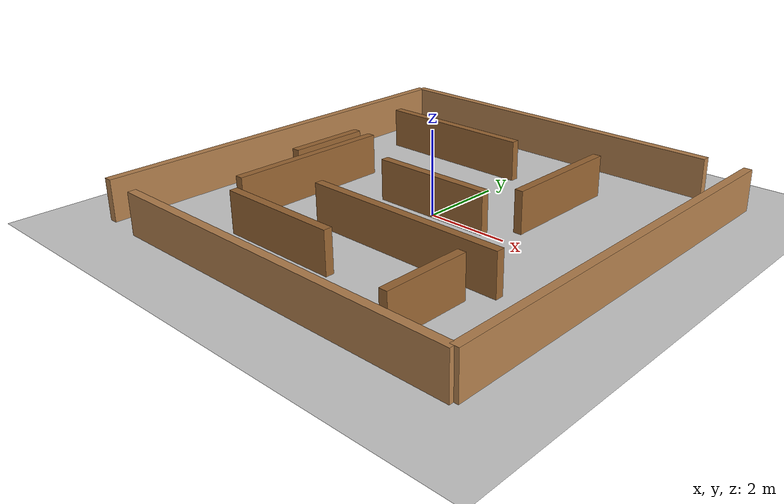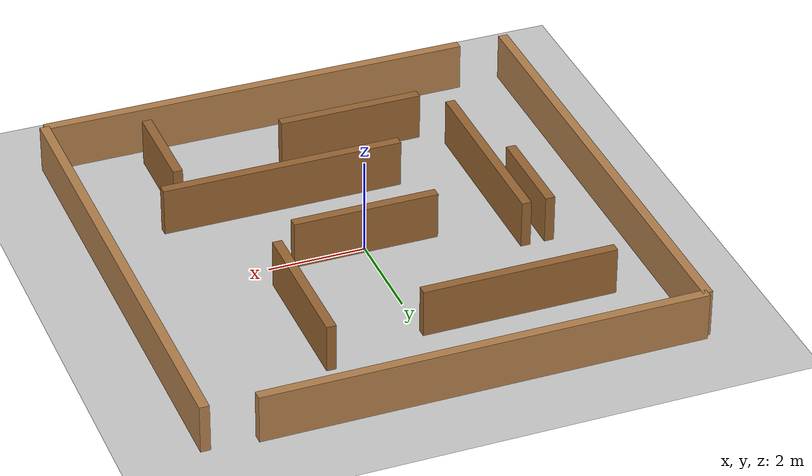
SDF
<?xml version="1.0" ?>
<sdf version="1.8">
  <world name="maze_world">
    <!-- System plugins required for Gazebo Harmonic -->
    <plugin filename="gz-sim-physics-system" name="gz::sim::systems::Physics"/>
    <plugin filename="gz-sim-user-commands-system" name="gz::sim::systems::UserCommands"/>
    <plugin filename="gz-sim-scene-broadcaster-system" name="gz::sim::systems::SceneBroadcaster"/>

    <physics name="1ms" type="ignored">
      <max_step_size>0.001</max_step_size>
      <real_time_factor>1.0</real_time_factor>
    </physics>

    <!-- Lighting -->
    <light type="directional" name="sun">
      <cast_shadows>true</cast_shadows>
      <pose>0 0 10 0 0 0</pose>
      <diffuse>0.8 0.8 0.8 1</diffuse>
      <specular>0.2 0.2 0.2 1</specular>
      <attenuation>
        <range>1000</range>
        <constant>0.9</constant>
        <linear>0.01</linear>
        <quadratic>0.001</quadratic>
      </attenuation>
      <direction>-0.5 0.1 -0.9</direction>
    </light>

    <!-- Ground plane -->
    <model name="ground_plane">
      <static>true</static>
      <link name="link">
        <collision name="collision">
          <geometry>
            <plane>
              <normal>0 0 1</normal>
              <size>20 20</size>
            </plane>
          </geometry>
        </collision>
        <visual name="visual">
          <geometry>
            <plane>
              <normal>0 0 1</normal>
              <size>20 20</size>
            </plane>
          </geometry>
          <material>
            <ambient>0.5 0.5 0.5 1</ambient>
            <diffuse>0.8 0.8 0.8 1</diffuse>
          </material>
        </visual>
      </link>
    </model>

    <!-- Maze walls - Outer boundary -->
    <model name="wall_north">
      <pose>-0.5 5 0.5 0 0 0</pose>
      <static>true</static>
      <link name="link">
        <collision name="collision">
          <geometry>
            <box><size>9 0.2 1</size></box>
          </geometry>
        </collision>
        <visual name="visual">
          <geometry>
            <box><size>9 0.2 1</size></box>
          </geometry>
          <material>
            <ambient>0.7 0.5 0.3 1</ambient>
            <diffuse>0.7 0.5 0.3 1</diffuse>
          </material>
        </visual>
      </link>
    </model>

    <model name="wall_south">
      <pose>0.5 -5 0.5 0 0 0</pose>
      <static>true</static>
      <link name="link">
        <collision name="collision">
          <geometry>
            <box><size>9 0.2 1</size></box>
          </geometry>
        </collision>
        <visual name="visual">
          <geometry>
            <box><size>9 0.2 1</size></box>
          </geometry>
          <material>
            <ambient>0.7 0.5 0.3 1</ambient>
            <diffuse>0.7 0.5 0.3 1</diffuse>
          </material>
        </visual>
      </link>
    </model>

    <model name="wall_east">
      <pose>5 0 0.5 0 0 0</pose>
      <static>true</static>
      <link name="link">
        <collision name="collision">
          <geometry>
            <box><size>0.2 10 1</size></box>
          </geometry>
        </collision>
        <visual name="visual">
          <geometry>
            <box><size>0.2 10 1</size></box>
          </geometry>
          <material>
            <ambient>0.7 0.5 0.3 1</ambient>
            <diffuse>0.7 0.5 0.3 1</diffuse>
          </material>
        </visual>
      </link>
    </model>

    <model name="wall_west">
      <pose>-5 0 0.5 0 0 0</pose>
      <static>true</static>
      <link name="link">
        <collision name="collision">
          <geometry>
            <box><size>0.2 10 1</size></box>
          </geometry>
        </collision>
        <visual name="visual">
          <geometry>
            <box><size>0.2 10 1</size></box>
          </geometry>
          <material>
            <ambient>0.7 0.5 0.3 1</ambient>
            <diffuse>0.7 0.5 0.3 1</diffuse>
          </material>
        </visual>
      </link>
    </model>

    <!-- Interior maze walls -->
    <model name="maze_wall_1">
      <pose>-2 3 0.5 0 0 0</pose>
      <static>true</static>
      <link name="link">
        <collision name="collision">
          <geometry>
            <box><size>4 0.2 1</size></box>
          </geometry>
        </collision>
        <visual name="visual">
          <geometry>
            <box><size>4 0.2 1</size></box>
          </geometry>
          <material>
            <ambient>0.6 0.4 0.2 1</ambient>
            <diffuse>0.6 0.4 0.2 1</diffuse>
          </material>
        </visual>
      </link>
    </model>

    <model name="maze_wall_2">
      <pose>2 2 0.5 0 0 1.57</pose>
      <static>true</static>
      <link name="link">
        <collision name="collision">
          <geometry>
            <box><size>3 0.2 1</size></box>
          </geometry>
        </collision>
        <visual name="visual">
          <geometry>
            <box><size>3 0.2 1</size></box>
          </geometry>
          <material>
            <ambient>0.6 0.4 0.2 1</ambient>
            <diffuse>0.6 0.4 0.2 1</diffuse>
          </material>
        </visual>
      </link>
    </model>

    <model name="maze_wall_3">
      <pose>-3 -1 0.5 0 0 1.57</pose>
      <static>true</static>
      <link name="link">
        <collision name="collision">
          <geometry>
            <box><size>4 0.2 1</size></box>
          </geometry>
        </collision>
        <visual name="visual">
          <geometry>
            <box><size>4 0.2 1</size></box>
          </geometry>
          <material>
            <ambient>0.6 0.4 0.2 1</ambient>
            <diffuse>0.6 0.4 0.2 1</diffuse>
          </material>
        </visual>
      </link>
    </model>

    <model name="maze_wall_4">
      <pose>1 -2 0.5 0 0 0</pose>
      <static>true</static>
      <link name="link">
        <collision name="collision">
          <geometry>
            <box><size>5 0.2 1</size></box>
          </geometry>
        </collision>
        <visual name="visual">
          <geometry>
            <box><size>5 0.2 1</size></box>
          </geometry>
          <material>
            <ambient>0.6 0.4 0.2 1</ambient>
            <diffuse>0.6 0.4 0.2 1</diffuse>
          </material>
        </visual>
      </link>
    </model>

    <model name="maze_wall_5">
      <pose>-3.5 0 0.5 0 0 1.57</pose>
      <static>true</static>
      <link name="link">
        <collision name="collision">
          <geometry>
            <box><size>2 0.2 1</size></box>
          </geometry>
        </collision>
        <visual name="visual">
          <geometry>
            <box><size>2 0.2 1</size></box>
          </geometry>
          <material>
            <ambient>0.6 0.4 0.2 1</ambient>
            <diffuse>0.6 0.4 0.2 1</diffuse>
          </material>
        </visual>
      </link>
    </model>

    <model name="maze_wall_6">
      <pose>0 0 0.5 0 0 0</pose>
      <static>true</static>
      <link name="link">
        <collision name="collision">
          <geometry>
            <box><size>3 0.2 1</size></box>
          </geometry>
        </collision>
        <visual name="visual">
          <geometry>
            <box><size>3 0.2 1</size></box>
          </geometry>
          <material>
            <ambient>0.6 0.4 0.2 1</ambient>
            <diffuse>0.6 0.4 0.2 1</diffuse>
          </material>
        </visual>
      </link>
    </model>

    <model name="maze_wall_7">
      <pose>3 -3.5 0.5 0 0 1.57</pose>
      <static>true</static>
      <link name="link">
        <collision name="collision">
          <geometry>
            <box><size>2 0.2 1</size></box>
          </geometry>
        </collision>
        <visual name="visual">
          <geometry>
            <box><size>2 0.2 1</size></box>
          </geometry>
          <material>
            <ambient>0.6 0.4 0.2 1</ambient>
            <diffuse>0.6 0.4 0.2 1</diffuse>
          </material>
        </visual>
      </link>
    </model>

    <model name="maze_wall_8">
      <pose>-1 -3.5 0.5 0 0 0</pose>
      <static>true</static>
      <link name="link">
        <collision name="collision">
          <geometry>
            <box><size>3 0.2 1</size></box>
          </geometry>
        </collision>
        <visual name="visual">
          <geometry>
            <box><size>3 0.2 1</size></box>
          </geometry>
          <material>
            <ambient>0.6 0.4 0.2 1</ambient>
            <diffuse>0.6 0.4 0.2 1</diffuse>
          </material>
        </visual>
      </link>
    </model>

  </world>
</sdf>
